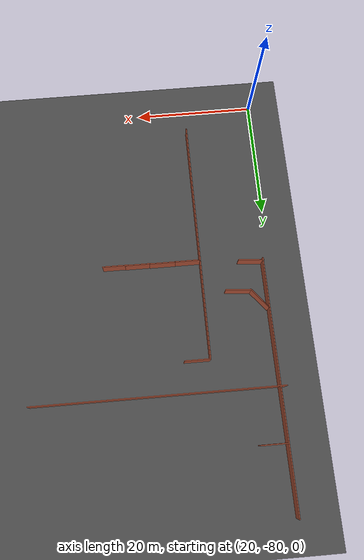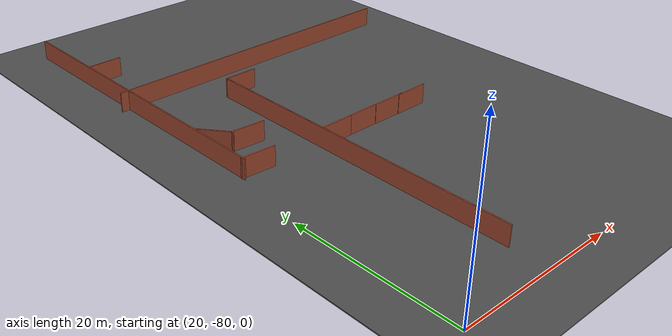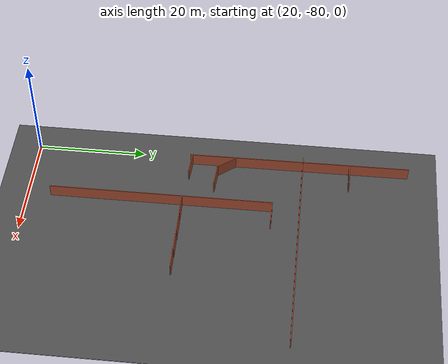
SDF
<sdf version="1.6">
 <world name="default">
  <model name="ground_plane">
   <static>1</static>
   <link name="link">
    <collision name="collision">
     <geometry><plane><normal>0 0 1</normal><size>200 200</size></plane></geometry>
     <surface><friction><ode><mu>100</mu><mu2>50</mu2></ode></friction></surface>
    </collision>
    <visual name="visual">
     <cast_shadows>0</cast_shadows>
     <geometry><plane><normal>0 0 1</normal><size>200 200</size></plane></geometry>
     <material>
      <script><uri>file://media/materials/scripts/gazebo.material</uri><name>Gazebo/Grey</name></script>
     </material>
    </visual>
   </link>
  </model>
  <model name="asphalt_plane">
   <static>1</static>
   <link name="link">
    <collision name="collision"><geometry><box><size>200 200 0.1</size></box></geometry></collision>
    <visual name="visual">
     <cast_shadows>0</cast_shadows>
     <geometry><box><size>200 200 0.1</size></box></geometry>
     <material>
      <script>
       <uri>model://asphalt_plane/materials/scripts</uri>
       <uri>model://asphalt_plane/materials/textures</uri>
       <name>vrc/asphalt</name>
      </script>
     </material>
    </visual>
   </link>
  </model>
  <model name="longwall_clone">
   <pose>40.5339 -30.0862 0 0 -0 0</pose>
   <link name="Wall_0">
    <collision name="Wall_0_Collision">
     <geometry><box><size>40.5 0.15 2.5</size></box></geometry>
     <pose>0 0 1.25 0 -0 0</pose>
    </collision>
    <visual name="Wall_0_Visual">
     <pose>0 0 1.25 0 -0 0</pose>
     <geometry><box><size>40.5 0.15 2.5</size></box></geometry>
     <material>
      <script><uri>file://media/materials/scripts/gazebo.material</uri><name>Gazebo/Bricks</name></script>
      <ambient>1 1 1 1</ambient>
     </material>
    </visual>
    <pose>1e-06 0 0 0 -0 0</pose>
   </link>
   <static>1</static>
  </model>
  <model name="longwall_clone_clone_3_clone_1_clone">
   <pose>21.3531 -30.8304 0 0 0 -1.56602</pose>
   <link name="Wall_0">
    <collision name="Wall_0_Collision">
     <geometry><box><size>40.5 0.15 2.5</size></box></geometry>
     <pose>0 0 1.25 0 -0 0</pose>
    </collision>
    <visual name="Wall_0_Visual">
     <pose>0 0 1.25 0 -0 0</pose>
     <geometry><box><size>40.5 0.15 2.5</size></box></geometry>
     <material>
      <script><uri>file://media/materials/scripts/gazebo.material</uri><name>Gazebo/Bricks</name></script>
      <ambient>1 1 1 1</ambient>
     </material>
    </visual>
    <pose>1e-06 0 0 0 -0 0</pose>
   </link>
   <static>1</static>
  </model>
  <model name="longwall_0_clone_clone">
   <pose>31.77 -55.4466 0 0 0 -1.57092</pose>
   <link name="Wall_0">
    <collision name="Wall_0_Collision">
     <geometry><box><size>40.5 0.15 2.5</size></box></geometry>
     <pose>0 0 1.25 0 -0 0</pose>
    </collision>
    <visual name="Wall_0_Visual">
     <pose>0 0 1.25 0 -0 0</pose>
     <geometry><box><size>40.5 0.15 2.5</size></box></geometry>
     <material>
      <script><uri>file://media/materials/scripts/gazebo.material</uri><name>Gazebo/Bricks</name></script>
      <ambient>1 1 1 1</ambient>
     </material>
    </visual>
    <pose>1e-06 0 0 0 -0 0</pose>
   </link>
   <static>1</static>
  </model>
  <model name="worlds_1_clone_0_clone_clone_0_clone_2_clone_0_clone_1">
   <pose>33.8189 -35.1168 0 0 0 -1.57092</pose>
   <link name="Wall_0">
    <collision name="Wall_0_Collision">
     <geometry><box><size>4.25 0.15 2.5</size></box></geometry>
     <pose>0 0 1.25 0 -0 0</pose>
    </collision>
    <visual name="Wall_0_Visual">
     <pose>0 0 1.25 0 -0 0</pose>
     <geometry><box><size>4.25 0.15 2.5</size></box></geometry>
     <material>
      <script><uri>file://media/materials/scripts/gazebo.material</uri><name>Gazebo/Bricks</name></script>
      <ambient>1 1 1 1</ambient>
     </material>
    </visual>
    <pose>0 -0 0 0 -0 1.5708</pose>
   </link>
   <static>1</static>
  </model>
  <model name="worlds_1_clone_0_clone_clone_0_clone_2_clone_0_clone_clone">
   <pose>23.5112 -21.4324 0 0 0 -1.57092</pose>
   <link name="Wall_0">
    <collision name="Wall_0_Collision">
     <geometry><box><size>4.25 0.15 2.5</size></box></geometry>
     <pose>0 0 1.25 0 -0 0</pose>
    </collision>
    <visual name="Wall_0_Visual">
     <pose>0 0 1.25 0 -0 0</pose>
     <geometry><box><size>4.25 0.15 2.5</size></box></geometry>
     <material>
      <script><uri>file://media/materials/scripts/gazebo.material</uri><name>Gazebo/Bricks</name></script>
      <ambient>1 1 1 1</ambient>
     </material>
    </visual>
    <pose>0 -0 0 0 -0 1.5708</pose>
   </link>
   <static>1</static>
  </model>
  <model name="worlds_0_clone_clone_clone_0">
   <pose>23.3769 -50.8024 0 0 -0 1.49697</pose>
   <link name="Wall_0">
    <collision name="Wall_0_Collision">
     <geometry><box><size>4.25 0.15 2.5</size></box></geometry>
     <pose>0 0 1.25 0 -0 0</pose>
    </collision>
    <visual name="Wall_0_Visual">
     <pose>0 0 1.25 0 -0 0</pose>
     <geometry><box><size>4.25 0.15 2.5</size></box></geometry>
     <material>
      <script><uri>file://media/materials/scripts/gazebo.material</uri><name>Gazebo/Bricks</name></script>
      <ambient>1 1 1 1</ambient>
     </material>
    </visual>
    <pose>0 -0 0 0 -0 1.5708</pose>
   </link>
   <static>1</static>
  </model>
  <model name="worlds_2_clone_clone_0_clone_2_clone">
   <pose>22.814 -44.242 0 0 -0 0.67691</pose>
   <link name="Wall_0">
    <collision name="Wall_0_Collision">
     <geometry><box><size>4.25 0.15 2.5</size></box></geometry>
     <pose>0 0 1.25 0 -0 0</pose>
    </collision>
    <visual name="Wall_0_Visual">
     <pose>0 0 1.25 0 -0 0</pose>
     <geometry><box><size>4.25 0.15 2.5</size></box></geometry>
     <material>
      <script><uri>file://media/materials/scripts/gazebo.material</uri><name>Gazebo/Bricks</name></script>
      <ambient>1 1 1 1</ambient>
     </material>
    </visual>
    <pose>0 -0 0 0 -0 1.5708</pose>
   </link>
   <static>1</static>
  </model>
  <model name="worlds_0_clone_clone_1_clone">
   <pose>26.0666 -45.8925 0 0 -0 1.49697</pose>
   <link name="Wall_0">
    <collision name="Wall_0_Collision">
     <geometry><box><size>4.25 0.15 2.5</size></box></geometry>
     <pose>0 0 1.25 0 -0 0</pose>
    </collision>
    <visual name="Wall_0_Visual">
     <pose>0 0 1.25 0 -0 0</pose>
     <geometry><box><size>4.25 0.15 2.5</size></box></geometry>
     <material>
      <script><uri>file://media/materials/scripts/gazebo.material</uri><name>Gazebo/Bricks</name></script>
      <ambient>1 1 1 1</ambient>
     </material>
    </visual>
    <pose>0 -0 0 0 -0 1.5708</pose>
   </link>
   <static>1</static>
  </model>
  <model name="worlds_1_clone_0_clone_clone_0_clone_clone_0_clone">
   <pose>33.9168 -51.4614 0 0 0 -1.57092</pose>
   <link name="Wall_0">
    <collision name="Wall_0_Collision">
     <geometry><box><size>4.25 0.15 2.5</size></box></geometry>
     <pose>0 0 1.25 0 -0 0</pose>
    </collision>
    <visual name="Wall_0_Visual">
     <pose>0 0 1.25 0 -0 0</pose>
     <geometry><box><size>4.25 0.15 2.5</size></box></geometry>
     <material>
      <script><uri>file://media/materials/scripts/gazebo.material</uri><name>Gazebo/Bricks</name></script>
      <ambient>1 1 1 1</ambient>
     </material>
    </visual>
    <pose>0 -0 0 0 -0 1.5708</pose>
   </link>
   <static>1</static>
  </model>
  <model name="worlds_1_clone_0_clone_clone_0_clone_clone_0_clone_0">
   <pose>38.0124 -51.4449 0 0 0 -1.57092</pose>
   <link name="Wall_0">
    <collision name="Wall_0_Collision">
     <geometry><box><size>4.25 0.15 2.5</size></box></geometry>
     <pose>0 0 1.25 0 -0 0</pose>
    </collision>
    <visual name="Wall_0_Visual">
     <pose>0 0 1.25 0 -0 0</pose>
     <geometry><box><size>4.25 0.15 2.5</size></box></geometry>
     <material>
      <script><uri>file://media/materials/scripts/gazebo.material</uri><name>Gazebo/Bricks</name></script>
      <ambient>1 1 1 1</ambient>
     </material>
    </visual>
    <pose>0 -0 0 0 -0 1.5708</pose>
   </link>
   <static>1</static>
  </model>
  <model name="worlds_1_clone_0_clone_clone_0_clone_clone_0_clone_1">
   <pose>42.0568 -51.4873 0 0 0 -1.57092</pose>
   <link name="Wall_0">
    <collision name="Wall_0_Collision">
     <geometry><box><size>4.25 0.15 2.5</size></box></geometry>
     <pose>0 0 1.25 0 -0 0</pose>
    </collision>
    <visual name="Wall_0_Visual">
     <pose>0 0 1.25 0 -0 0</pose>
     <geometry><box><size>4.25 0.15 2.5</size></box></geometry>
     <material>
      <script><uri>file://media/materials/scripts/gazebo.material</uri><name>Gazebo/Bricks</name></script>
      <ambient>1 1 1 1</ambient>
     </material>
    </visual>
    <pose>0 -0 0 0 -0 1.5708</pose>
   </link>
   <static>1</static>
  </model>
  <model name="worlds_1_clone_0_clone_clone_0_clone_clone_0_clone_2">
   <pose>45.8006 -51.541 0 0 0 -1.57092</pose>
   <link name="Wall_0">
    <collision name="Wall_0_Collision">
     <geometry><box><size>4.25 0.15 2.5</size></box></geometry>
     <pose>0 0 1.25 0 -0 0</pose>
    </collision>
    <visual name="Wall_0_Visual">
     <pose>0 0 1.25 0 -0 0</pose>
     <geometry><box><size>4.25 0.15 2.5</size></box></geometry>
     <material>
      <script><uri>file://media/materials/scripts/gazebo.material</uri><name>Gazebo/Bricks</name></script>
      <ambient>1 1 1 1</ambient>
     </material>
    </visual>
    <pose>0 -0 0 0 -0 1.5708</pose>
   </link>
   <static>1</static>
  </model>
 </world>
</sdf>
